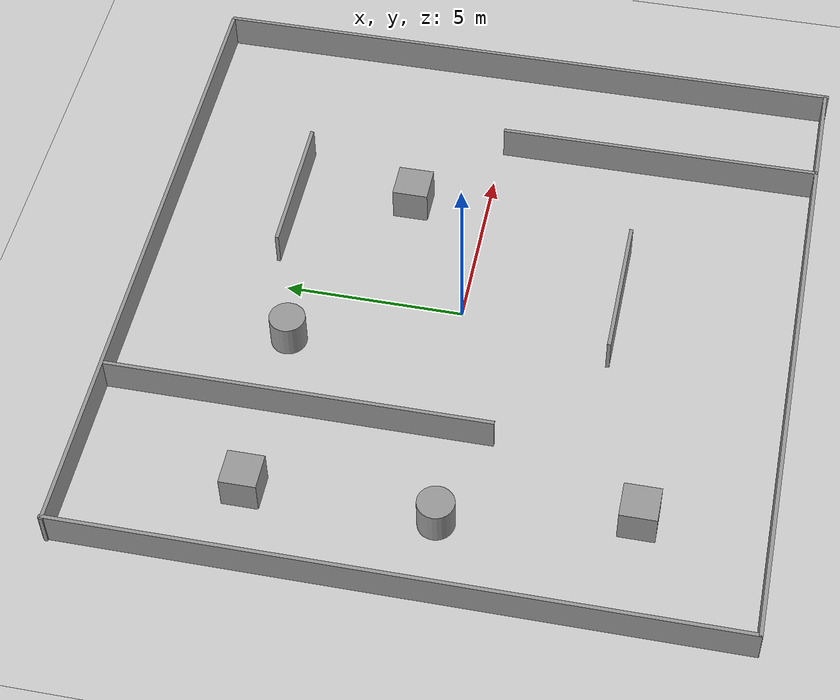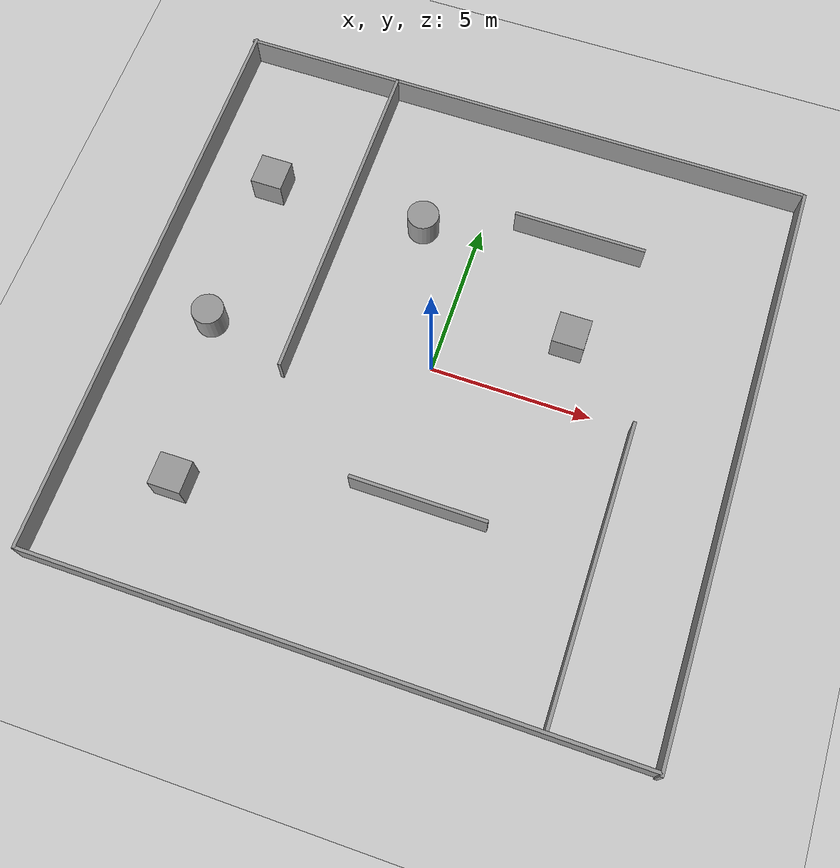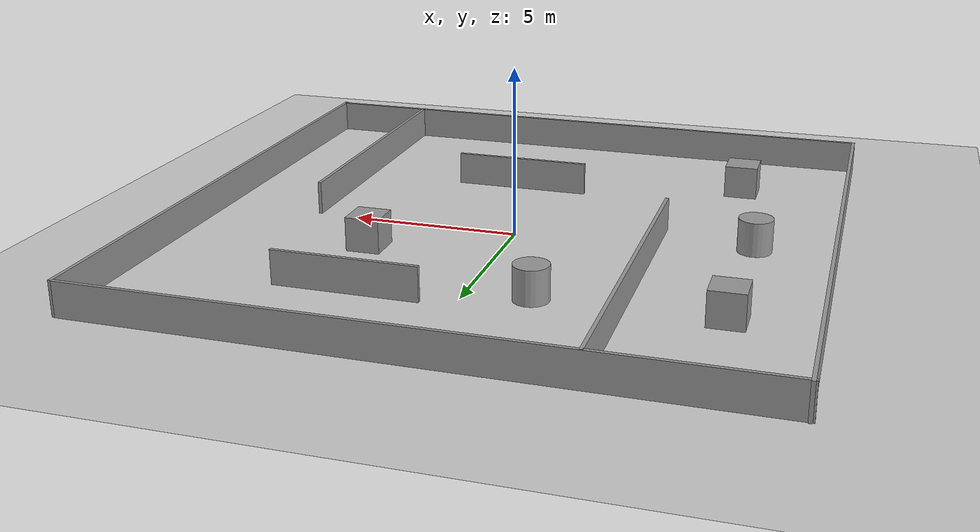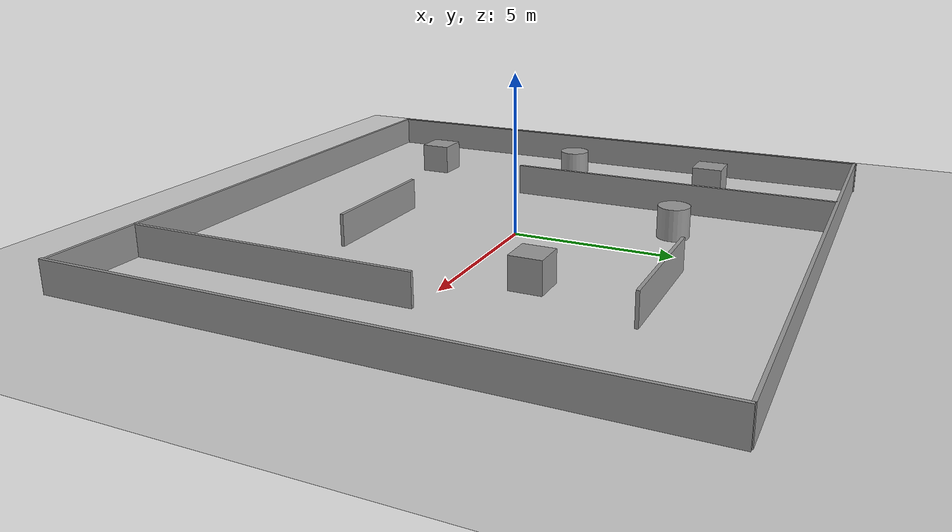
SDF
<sdf version="1.7">
 <world name="default">
  <light name="sun" type="directional">
   <pose>0 0 10 0 -0 0</pose>
   <diffuse>0.8 0.8 0.8 1</diffuse>
   <specular>0.2 0.2 0.2 1</specular>
   <attenuation>
    <range>1000</range>
    <constant>0.9</constant>
    <linear>0.01</linear>
    <quadratic>0.001</quadratic>
   </attenuation>
   <direction>-0.5 0.1 -0.9</direction>
   <spot><inner_angle>0</inner_angle><outer_angle>0</outer_angle><falloff>0</falloff></spot>
  </light>
  <model name="ground_plane">
   <static>1</static>
   <link name="link">
    <collision name="collision">
     <geometry><plane><normal>0 0 1</normal><size>100 100</size></plane></geometry>
     <surface>
      <contact><collide_bitmask>65535</collide_bitmask></contact>
      <friction><ode><mu>100</mu><mu2>50</mu2></ode></friction>
     </surface>
    </collision>
    <visual name="visual">
     <cast_shadows>0</cast_shadows>
     <geometry><plane><normal>0 0 1</normal><size>100 100</size></plane></geometry>
     <material>
      <script><uri>file://media/materials/scripts/gazebo.material</uri><name>Gazebo/Grey</name></script>
     </material>
    </visual>
   </link>
  </model>
  <gravity>0 0 -9.8</gravity>
  <magnetic_field>6e-06 2.3e-05 -4.2e-05</magnetic_field>
  <atmosphere type="adiabatic"/>
  <physics type="ode">
   <max_step_size>0.001</max_step_size>
   <real_time_factor>1</real_time_factor>
   <real_time_update_rate>1000</real_time_update_rate>
  </physics>
  <scene><ambient>0.4 0.4 0.4 1</ambient><background>0.7 0.7 0.7 1</background><shadows>1</shadows></scene>
  <spherical_coordinates>
   <surface_model>EARTH_WGS84</surface_model>
   <latitude_deg>0</latitude_deg>
   <longitude_deg>0</longitude_deg>
   <elevation>0</elevation>
   <heading_deg>0</heading_deg>
  </spherical_coordinates>
  <model name="w2">
   <link name="link_0">
    <inertial>
     <mass>1.88399</mass>
     <inertia><ixx>52.62</ixx><ixy>0</ixy><ixz>0</ixz><iyy>0.158664</iyy><iyz>0</iyz><izz>52.4647</izz></inertia>
    </inertial>
    <pose>-8.32284 -0.381676 0 0 -0 0</pose>
    <visual name="visual">
     <geometry><box><size>0.102972 18.2801 1</size></box></geometry>
     <material>
      <lighting>1</lighting>
      <script><uri>file://media/materials/scripts/gazebo.material</uri><name>Gazebo/Grey</name></script>
      <shader type="pixel"/>
     </material>
    </visual>
    <collision name="collision">
     <geometry><box><size>0.102972 18.2801 1</size></box></geometry>
     <surface>
      <friction>
       <ode><mu>1</mu><mu2>1</mu2><fdir1>0 0 0</fdir1><slip1>0</slip1><slip2>0</slip2></ode>
       <torsional>
        <coefficient>1</coefficient>
        <patch_radius>0</patch_radius>
        <surface_radius>0</surface_radius>
        <use_patch_radius>1</use_patch_radius>
        <ode><slip>0</slip></ode>
       </torsional>
      </friction>
      <bounce><restitution_coefficient>0</restitution_coefficient><threshold>1e+06</threshold></bounce>
      <contact>
       <collide_without_contact>0</collide_without_contact>
       <collide_without_contact_bitmask>1</collide_without_contact_bitmask>
       <collide_bitmask>1</collide_bitmask>
       <ode>
        <soft_cfm>0</soft_cfm>
        <soft_erp>0.2</soft_erp>
        <kp>1e+13</kp>
        <kd>1</kd>
        <max_vel>0.01</max_vel>
        <min_depth>0</min_depth>
       </ode>
       <bullet>
        <split_impulse>1</split_impulse>
        <split_impulse_penetration_threshold>-0.01</split_impulse_penetration_threshold>
        <soft_cfm>0</soft_cfm>
        <soft_erp>0.2</soft_erp>
        <kp>1e+13</kp>
        <kd>1</kd>
       </bullet>
      </contact>
     </surface>
    </collision>
   </link>
   <link name="link_0_clone">
    <inertial>
     <mass>1.10158</mass>
     <inertia><ixx>10.5878</ixx><ixy>0</ixy><ixz>0</ixz><iyy>0.092772</iyy><iyz>0</iyz><izz>10.497</izz></inertia>
    </inertial>
    <pose>-3.32467 3.32594 0 0 -0 0</pose>
    <visual name="visual">
     <geometry><box><size>0.102972 10.6929 1</size></box></geometry>
     <material>
      <lighting>1</lighting>
      <script><uri>file://media/materials/scripts/gazebo.material</uri><name>Gazebo/Grey</name></script>
      <shader type="pixel"/>
     </material>
    </visual>
    <collision name="collision">
     <geometry><box><size>0.102972 10.6929 1</size></box></geometry>
     <surface>
      <friction>
       <ode><mu>1</mu><mu2>1</mu2><fdir1>0 0 0</fdir1><slip1>0</slip1><slip2>0</slip2></ode>
       <torsional>
        <coefficient>1</coefficient>
        <patch_radius>0</patch_radius>
        <surface_radius>0</surface_radius>
        <use_patch_radius>1</use_patch_radius>
        <ode><slip>0</slip></ode>
       </torsional>
      </friction>
      <bounce><restitution_coefficient>0</restitution_coefficient><threshold>1e+06</threshold></bounce>
      <contact>
       <collide_without_contact>0</collide_without_contact>
       <collide_without_contact_bitmask>1</collide_without_contact_bitmask>
       <collide_bitmask>1</collide_bitmask>
       <ode>
        <soft_cfm>0</soft_cfm>
        <soft_erp>0.2</soft_erp>
        <kp>1e+13</kp>
        <kd>1</kd>
        <max_vel>0.01</max_vel>
        <min_depth>0</min_depth>
       </ode>
       <bullet>
        <split_impulse>1</split_impulse>
        <split_impulse_penetration_threshold>-0.01</split_impulse_penetration_threshold>
        <soft_cfm>0</soft_cfm>
        <soft_erp>0.2</soft_erp>
        <kp>1e+13</kp>
        <kd>1</kd>
       </bullet>
      </contact>
     </surface>
    </collision>
   </link>
   <link name="link_0_clone_0">
    <inertial>
     <mass>1.91995</mass>
     <inertia><ixx>55.7312</ixx><ixy>0</ixy><ixz>0</ixz><iyy>0.161693</iyy><iyz>0</iyz><izz>55.5729</izz></inertia>
    </inertial>
    <pose>0.944505 -9.51528 0 0 0 -1.57434</pose>
    <visual name="visual">
     <geometry><box><size>0.102972 18.6367 1</size></box></geometry>
     <material>
      <lighting>1</lighting>
      <script><uri>file://media/materials/scripts/gazebo.material</uri><name>Gazebo/Grey</name></script>
      <shader type="pixel"/>
     </material>
    </visual>
    <collision name="collision">
     <geometry><box><size>0.102972 18.6367 1</size></box></geometry>
     <surface>
      <friction>
       <ode><mu>1</mu><mu2>1</mu2><fdir1>0 0 0</fdir1><slip1>0</slip1><slip2>0</slip2></ode>
       <torsional>
        <coefficient>1</coefficient>
        <patch_radius>0</patch_radius>
        <surface_radius>0</surface_radius>
        <use_patch_radius>1</use_patch_radius>
        <ode><slip>0</slip></ode>
       </torsional>
      </friction>
      <bounce><restitution_coefficient>0</restitution_coefficient><threshold>1e+06</threshold></bounce>
      <contact>
       <collide_without_contact>0</collide_without_contact>
       <collide_without_contact_bitmask>1</collide_without_contact_bitmask>
       <collide_bitmask>1</collide_bitmask>
       <ode>
        <soft_cfm>0</soft_cfm>
        <soft_erp>0.2</soft_erp>
        <kp>1e+13</kp>
        <kd>1</kd>
        <max_vel>0.01</max_vel>
        <min_depth>0</min_depth>
       </ode>
       <bullet>
        <split_impulse>1</split_impulse>
        <split_impulse_penetration_threshold>-0.01</split_impulse_penetration_threshold>
        <soft_cfm>0</soft_cfm>
        <soft_erp>0.2</soft_erp>
        <kp>1e+13</kp>
        <kd>1</kd>
       </bullet>
      </contact>
     </surface>
    </collision>
   </link>
   <link name="link_0_clone_0_clone">
    <inertial>
     <mass>1.91995</mass>
     <inertia><ixx>55.7312</ixx><ixy>0</ixy><ixz>0</ixz><iyy>0.161693</iyy><iyz>0</iyz><izz>55.5729</izz></inertia>
    </inertial>
    <pose>0.899697 8.63843 0 0 0 -1.57434</pose>
    <visual name="visual">
     <geometry><box><size>0.102972 18.6367 1</size></box></geometry>
     <material>
      <lighting>1</lighting>
      <script><uri>file://media/materials/scripts/gazebo.material</uri><name>Gazebo/Grey</name></script>
      <shader type="pixel"/>
     </material>
    </visual>
    <collision name="collision">
     <geometry><box><size>0.102972 18.6367 1</size></box></geometry>
     <surface>
      <friction>
       <ode><mu>1</mu><mu2>1</mu2><fdir1>0 0 0</fdir1><slip1>0</slip1><slip2>0</slip2></ode>
       <torsional>
        <coefficient>1</coefficient>
        <patch_radius>0</patch_radius>
        <surface_radius>0</surface_radius>
        <use_patch_radius>1</use_patch_radius>
        <ode><slip>0</slip></ode>
       </torsional>
      </friction>
      <bounce><restitution_coefficient>0</restitution_coefficient><threshold>1e+06</threshold></bounce>
      <contact>
       <collide_without_contact>0</collide_without_contact>
       <collide_without_contact_bitmask>1</collide_without_contact_bitmask>
       <collide_bitmask>1</collide_bitmask>
       <ode>
        <soft_cfm>0</soft_cfm>
        <soft_erp>0.2</soft_erp>
        <kp>1e+13</kp>
        <kd>1</kd>
        <max_vel>0.01</max_vel>
        <min_depth>0</min_depth>
       </ode>
       <bullet>
        <split_impulse>1</split_impulse>
        <split_impulse_penetration_threshold>-0.01</split_impulse_penetration_threshold>
        <soft_cfm>0</soft_cfm>
        <soft_erp>0.2</soft_erp>
        <kp>1e+13</kp>
        <kd>1</kd>
       </bullet>
      </contact>
     </surface>
    </collision>
   </link>
   <link name="link_0_clone_1">
    <inertial>
     <mass>1.88399</mass>
     <inertia><ixx>52.62</ixx><ixy>0</ixy><ixz>0</ixz><iyy>0.158664</iyy><iyz>0</iyz><izz>52.4647</izz></inertia>
    </inertial>
    <pose>10.2604 -0.508915 0 0 -0 0</pose>
    <visual name="visual">
     <geometry><box><size>0.102972 18.2801 1</size></box></geometry>
     <material>
      <lighting>1</lighting>
      <script><uri>file://media/materials/scripts/gazebo.material</uri><name>Gazebo/Grey</name></script>
      <shader type="pixel"/>
     </material>
    </visual>
    <collision name="collision">
     <geometry><box><size>0.102972 18.2801 1</size></box></geometry>
     <surface>
      <friction>
       <ode><mu>1</mu><mu2>1</mu2><fdir1>0 0 0</fdir1><slip1>0</slip1><slip2>0</slip2></ode>
       <torsional>
        <coefficient>1</coefficient>
        <patch_radius>0</patch_radius>
        <surface_radius>0</surface_radius>
        <use_patch_radius>1</use_patch_radius>
        <ode><slip>0</slip></ode>
       </torsional>
      </friction>
      <bounce><restitution_coefficient>0</restitution_coefficient><threshold>1e+06</threshold></bounce>
      <contact>
       <collide_without_contact>0</collide_without_contact>
       <collide_without_contact_bitmask>1</collide_without_contact_bitmask>
       <collide_bitmask>1</collide_bitmask>
       <ode>
        <soft_cfm>0</soft_cfm>
        <soft_erp>0.2</soft_erp>
        <kp>1e+13</kp>
        <kd>1</kd>
        <max_vel>0.01</max_vel>
        <min_depth>0</min_depth>
       </ode>
       <bullet>
        <split_impulse>1</split_impulse>
        <split_impulse_penetration_threshold>-0.01</split_impulse_penetration_threshold>
        <soft_cfm>0</soft_cfm>
        <soft_erp>0.2</soft_erp>
        <kp>1e+13</kp>
        <kd>1</kd>
       </bullet>
      </contact>
     </surface>
    </collision>
   </link>
   <link name="link_0_clone_clone">
    <inertial>
     <mass>0.943454</mass>
     <inertia><ixx>6.67249</ixx><ixy>0</ixy><ixz>0</ixz><iyy>0.0794548</iyy><iyz>0</iyz><izz>6.5947</izz></inertia>
    </inertial>
    <pose>7.12467 -4.98991 0 0 -0 0</pose>
    <visual name="visual">
     <geometry><box><size>0.102972 9.15799 1</size></box></geometry>
     <material>
      <lighting>1</lighting>
      <script><uri>file://media/materials/scripts/gazebo.material</uri><name>Gazebo/Grey</name></script>
      <shader type="pixel"/>
     </material>
    </visual>
    <collision name="collision">
     <geometry><box><size>0.102972 9.15799 1</size></box></geometry>
     <surface>
      <friction>
       <ode><mu>1</mu><mu2>1</mu2><fdir1>0 0 0</fdir1><slip1>0</slip1><slip2>0</slip2></ode>
       <torsional>
        <coefficient>1</coefficient>
        <patch_radius>0</patch_radius>
        <surface_radius>0</surface_radius>
        <use_patch_radius>1</use_patch_radius>
        <ode><slip>0</slip></ode>
       </torsional>
      </friction>
      <bounce><restitution_coefficient>0</restitution_coefficient><threshold>1e+06</threshold></bounce>
      <contact>
       <collide_without_contact>0</collide_without_contact>
       <collide_without_contact_bitmask>1</collide_without_contact_bitmask>
       <collide_bitmask>1</collide_bitmask>
       <ode>
        <soft_cfm>0</soft_cfm>
        <soft_erp>0.2</soft_erp>
        <kp>1e+13</kp>
        <kd>1</kd>
        <max_vel>0.01</max_vel>
        <min_depth>0</min_depth>
       </ode>
       <bullet>
        <split_impulse>1</split_impulse>
        <split_impulse_penetration_threshold>-0.01</split_impulse_penetration_threshold>
        <soft_cfm>0</soft_cfm>
        <soft_erp>0.2</soft_erp>
        <kp>1e+13</kp>
        <kd>1</kd>
       </bullet>
      </contact>
     </surface>
    </collision>
   </link>
   <link name="link_0_clone_clone_clone">
    <inertial>
     <mass>0.431298</mass>
     <inertia>
      <ixx>0.665898</ixx>
      <ixy>0</ixy>
      <ixz>0</ixz>
      <iyy>0.0363226</iyy>
      <iyz>0</iyz>
      <izz>0.630338</izz>
     </inertia>
    </inertial>
    <pose>3.90913 5.11327 0 0 0 -1.57578</pose>
    <visual name="visual">
     <geometry><box><size>0.102972 4.18656 1</size></box></geometry>
     <material>
      <lighting>1</lighting>
      <script><uri>file://media/materials/scripts/gazebo.material</uri><name>Gazebo/Grey</name></script>
      <shader type="pixel"/>
     </material>
    </visual>
    <collision name="collision">
     <geometry><box><size>0.102972 4.18656 1</size></box></geometry>
     <surface>
      <friction>
       <ode><mu>1</mu><mu2>1</mu2><fdir1>0 0 0</fdir1><slip1>0</slip1><slip2>0</slip2></ode>
       <torsional>
        <coefficient>1</coefficient>
        <patch_radius>0</patch_radius>
        <surface_radius>0</surface_radius>
        <use_patch_radius>1</use_patch_radius>
        <ode><slip>0</slip></ode>
       </torsional>
      </friction>
      <bounce><restitution_coefficient>0</restitution_coefficient><threshold>1e+06</threshold></bounce>
      <contact>
       <collide_without_contact>0</collide_without_contact>
       <collide_without_contact_bitmask>1</collide_without_contact_bitmask>
       <collide_bitmask>1</collide_bitmask>
       <ode>
        <soft_cfm>0</soft_cfm>
        <soft_erp>0.2</soft_erp>
        <kp>1e+13</kp>
        <kd>1</kd>
        <max_vel>0.01</max_vel>
        <min_depth>0</min_depth>
       </ode>
       <bullet>
        <split_impulse>1</split_impulse>
        <split_impulse_penetration_threshold>-0.01</split_impulse_penetration_threshold>
        <soft_cfm>0</soft_cfm>
        <soft_erp>0.2</soft_erp>
        <kp>1e+13</kp>
        <kd>1</kd>
       </bullet>
      </contact>
     </surface>
    </collision>
   </link>
   <link name="link_0_clone_clone_clone_clone">
    <inertial>
     <mass>0.431298</mass>
     <inertia>
      <ixx>0.665898</ixx>
      <ixy>0</ixy>
      <ixz>0</ixz>
      <iyy>0.0363226</iyy>
      <iyz>0</iyz>
      <izz>0.630338</izz>
     </inertia>
    </inertial>
    <pose>1.88824 -4.59589 0 0 0 -1.57578</pose>
    <visual name="visual">
     <geometry><box><size>0.102972 4.18656 1</size></box></geometry>
     <material>
      <lighting>1</lighting>
      <script><uri>file://media/materials/scripts/gazebo.material</uri><name>Gazebo/Grey</name></script>
      <shader type="pixel"/>
     </material>
    </visual>
    <collision name="collision">
     <geometry><box><size>0.102972 4.18656 1</size></box></geometry>
     <surface>
      <friction>
       <ode><mu>1</mu><mu2>1</mu2><fdir1>0 0 0</fdir1><slip1>0</slip1><slip2>0</slip2></ode>
       <torsional>
        <coefficient>1</coefficient>
        <patch_radius>0</patch_radius>
        <surface_radius>0</surface_radius>
        <use_patch_radius>1</use_patch_radius>
        <ode><slip>0</slip></ode>
       </torsional>
      </friction>
      <bounce><restitution_coefficient>0</restitution_coefficient><threshold>1e+06</threshold></bounce>
      <contact>
       <collide_without_contact>0</collide_without_contact>
       <collide_without_contact_bitmask>1</collide_without_contact_bitmask>
       <collide_bitmask>1</collide_bitmask>
       <ode>
        <soft_cfm>0</soft_cfm>
        <soft_erp>0.2</soft_erp>
        <kp>1e+13</kp>
        <kd>1</kd>
        <max_vel>0.01</max_vel>
        <min_depth>0</min_depth>
       </ode>
       <bullet>
        <split_impulse>1</split_impulse>
        <split_impulse_penetration_threshold>-0.01</split_impulse_penetration_threshold>
        <soft_cfm>0</soft_cfm>
        <soft_erp>0.2</soft_erp>
        <kp>1e+13</kp>
        <kd>1</kd>
       </bullet>
      </contact>
     </surface>
    </collision>
   </link>
   <link name="link_1">
    <inertial>
     <mass>1</mass>
     <inertia>
      <ixx>0.166667</ixx>
      <ixy>0</ixy>
      <ixz>0</ixz>
      <iyy>0.166667</iyy>
      <iyz>0</iyz>
      <izz>0.166667</izz>
     </inertia>
    </inertial>
    <pose>4.59856 1.78932 0 0 -0 0</pose>
    <visual name="visual">
     <geometry><box><size>1 1 1</size></box></geometry>
     <material>
      <lighting>1</lighting>
      <script><uri>file://media/materials/scripts/gazebo.material</uri><name>Gazebo/Grey</name></script>
      <shader type="pixel"/>
     </material>
    </visual>
    <collision name="collision">
     <geometry><box><size>1 1 1</size></box></geometry>
     <surface>
      <friction>
       <ode><mu>1</mu><mu2>1</mu2><fdir1>0 0 0</fdir1><slip1>0</slip1><slip2>0</slip2></ode>
       <torsional>
        <coefficient>1</coefficient>
        <patch_radius>0</patch_radius>
        <surface_radius>0</surface_radius>
        <use_patch_radius>1</use_patch_radius>
        <ode><slip>0</slip></ode>
       </torsional>
      </friction>
      <bounce><restitution_coefficient>0</restitution_coefficient><threshold>1e+06</threshold></bounce>
      <contact>
       <collide_without_contact>0</collide_without_contact>
       <collide_without_contact_bitmask>1</collide_without_contact_bitmask>
       <collide_bitmask>1</collide_bitmask>
       <ode>
        <soft_cfm>0</soft_cfm>
        <soft_erp>0.2</soft_erp>
        <kp>1e+13</kp>
        <kd>1</kd>
        <max_vel>0.01</max_vel>
        <min_depth>0</min_depth>
       </ode>
       <bullet>
        <split_impulse>1</split_impulse>
        <split_impulse_penetration_threshold>-0.01</split_impulse_penetration_threshold>
        <soft_cfm>0</soft_cfm>
        <soft_erp>0.2</soft_erp>
        <kp>1e+13</kp>
        <kd>1</kd>
       </bullet>
      </contact>
     </surface>
    </collision>
   </link>
   <link name="link_2">
    <inertial>
     <mass>1</mass>
     <inertia>
      <ixx>0.166667</ixx>
      <ixy>0</ixy>
      <ixz>0</ixz>
      <iyy>0.166667</iyy>
      <iyz>0</iyz>
      <izz>0.166667</izz>
     </inertia>
    </inertial>
    <pose>-5.97304 4.08756 0 0 -0 0</pose>
    <visual name="visual">
     <geometry><box><size>1 1 1</size></box></geometry>
     <material>
      <lighting>1</lighting>
      <script><uri>file://media/materials/scripts/gazebo.material</uri><name>Gazebo/Grey</name></script>
      <shader type="pixel"/>
     </material>
    </visual>
    <collision name="collision">
     <geometry><box><size>1 1 1</size></box></geometry>
     <surface>
      <friction>
       <ode><mu>1</mu><mu2>1</mu2><fdir1>0 0 0</fdir1><slip1>0</slip1><slip2>0</slip2></ode>
       <torsional>
        <coefficient>1</coefficient>
        <patch_radius>0</patch_radius>
        <surface_radius>0</surface_radius>
        <use_patch_radius>1</use_patch_radius>
        <ode><slip>0</slip></ode>
       </torsional>
      </friction>
      <bounce><restitution_coefficient>0</restitution_coefficient><threshold>1e+06</threshold></bounce>
      <contact>
       <collide_without_contact>0</collide_without_contact>
       <collide_without_contact_bitmask>1</collide_without_contact_bitmask>
       <collide_bitmask>1</collide_bitmask>
       <ode>
        <soft_cfm>0</soft_cfm>
        <soft_erp>0.2</soft_erp>
        <kp>1e+13</kp>
        <kd>1</kd>
        <max_vel>0.01</max_vel>
        <min_depth>0</min_depth>
       </ode>
       <bullet>
        <split_impulse>1</split_impulse>
        <split_impulse_penetration_threshold>-0.01</split_impulse_penetration_threshold>
        <soft_cfm>0</soft_cfm>
        <soft_erp>0.2</soft_erp>
        <kp>1e+13</kp>
        <kd>1</kd>
       </bullet>
      </contact>
     </surface>
    </collision>
   </link>
   <link name="link_3">
    <inertial>
     <mass>1</mass>
     <inertia>
      <ixx>0.166667</ixx>
      <ixy>0</ixy>
      <ixz>0</ixz>
      <iyy>0.166667</iyy>
      <iyz>0</iyz>
      <izz>0.166667</izz>
     </inertia>
    </inertial>
    <pose>-5.05552 -6.10617 0 0 -0 0</pose>
    <visual name="visual">
     <geometry><box><size>1 1 1</size></box></geometry>
     <material>
      <lighting>1</lighting>
      <script><uri>file://media/materials/scripts/gazebo.material</uri><name>Gazebo/Grey</name></script>
      <shader type="pixel"/>
     </material>
    </visual>
    <collision name="collision">
     <geometry><box><size>1 1 1</size></box></geometry>
     <surface>
      <friction>
       <ode><mu>1</mu><mu2>1</mu2><fdir1>0 0 0</fdir1><slip1>0</slip1><slip2>0</slip2></ode>
       <torsional>
        <coefficient>1</coefficient>
        <patch_radius>0</patch_radius>
        <surface_radius>0</surface_radius>
        <use_patch_radius>1</use_patch_radius>
        <ode><slip>0</slip></ode>
       </torsional>
      </friction>
      <bounce><restitution_coefficient>0</restitution_coefficient><threshold>1e+06</threshold></bounce>
      <contact>
       <collide_without_contact>0</collide_without_contact>
       <collide_without_contact_bitmask>1</collide_without_contact_bitmask>
       <collide_bitmask>1</collide_bitmask>
       <ode>
        <soft_cfm>0</soft_cfm>
        <soft_erp>0.2</soft_erp>
        <kp>1e+13</kp>
        <kd>1</kd>
        <max_vel>0.01</max_vel>
        <min_depth>0</min_depth>
       </ode>
       <bullet>
        <split_impulse>1</split_impulse>
        <split_impulse_penetration_threshold>-0.01</split_impulse_penetration_threshold>
        <soft_cfm>0</soft_cfm>
        <soft_erp>0.2</soft_erp>
        <kp>1e+13</kp>
        <kd>1</kd>
       </bullet>
      </contact>
     </surface>
    </collision>
   </link>
   <link name="link_4">
    <inertial>
     <mass>1</mass>
     <inertia><ixx>0.145833</ixx><ixy>0</ixy><ixz>0</ixz><iyy>0.145833</iyy><iyz>0</iyz><izz>0.125</izz></inertia>
    </inertial>
    <pose>-6.04301 -1.00413 0 0 -0 0</pose>
    <visual name="visual">
     <geometry><cylinder><radius>0.5</radius><length>1</length></cylinder></geometry>
     <material>
      <lighting>1</lighting>
      <script><uri>file://media/materials/scripts/gazebo.material</uri><name>Gazebo/Grey</name></script>
      <shader type="pixel"/>
     </material>
    </visual>
    <collision name="collision">
     <geometry><cylinder><radius>0.5</radius><length>1</length></cylinder></geometry>
     <surface>
      <friction>
       <ode><mu>1</mu><mu2>1</mu2><fdir1>0 0 0</fdir1><slip1>0</slip1><slip2>0</slip2></ode>
       <torsional>
        <coefficient>1</coefficient>
        <patch_radius>0</patch_radius>
        <surface_radius>0</surface_radius>
        <use_patch_radius>1</use_patch_radius>
        <ode><slip>0</slip></ode>
       </torsional>
      </friction>
      <bounce><restitution_coefficient>0</restitution_coefficient><threshold>1e+06</threshold></bounce>
      <contact>
       <collide_without_contact>0</collide_without_contact>
       <collide_without_contact_bitmask>1</collide_without_contact_bitmask>
       <collide_bitmask>1</collide_bitmask>
       <ode>
        <soft_cfm>0</soft_cfm>
        <soft_erp>0.2</soft_erp>
        <kp>1e+13</kp>
        <kd>1</kd>
        <max_vel>0.01</max_vel>
        <min_depth>0</min_depth>
       </ode>
       <bullet>
        <split_impulse>1</split_impulse>
        <split_impulse_penetration_threshold>-0.01</split_impulse_penetration_threshold>
        <soft_cfm>0</soft_cfm>
        <soft_erp>0.2</soft_erp>
        <kp>1e+13</kp>
        <kd>1</kd>
       </bullet>
      </contact>
     </surface>
    </collision>
   </link>
   <link name="link_5">
    <inertial>
     <mass>1</mass>
     <inertia><ixx>0.145833</ixx><ixy>0</ixy><ixz>0</ixz><iyy>0.145833</iyy><iyz>0</iyz><izz>0.125</izz></inertia>
    </inertial>
    <pose>-0.90617 4.14744 0 0 -0 0</pose>
    <visual name="visual">
     <geometry><cylinder><radius>0.5</radius><length>1</length></cylinder></geometry>
     <material>
      <lighting>1</lighting>
      <script><uri>file://media/materials/scripts/gazebo.material</uri><name>Gazebo/Grey</name></script>
      <shader type="pixel"/>
     </material>
    </visual>
    <collision name="collision">
     <geometry><cylinder><radius>0.5</radius><length>1</length></cylinder></geometry>
     <surface>
      <friction>
       <ode><mu>1</mu><mu2>1</mu2><fdir1>0 0 0</fdir1><slip1>0</slip1><slip2>0</slip2></ode>
       <torsional>
        <coefficient>1</coefficient>
        <patch_radius>0</patch_radius>
        <surface_radius>0</surface_radius>
        <use_patch_radius>1</use_patch_radius>
        <ode><slip>0</slip></ode>
       </torsional>
      </friction>
      <bounce><restitution_coefficient>0</restitution_coefficient><threshold>1e+06</threshold></bounce>
      <contact>
       <collide_without_contact>0</collide_without_contact>
       <collide_without_contact_bitmask>1</collide_without_contact_bitmask>
       <collide_bitmask>1</collide_bitmask>
       <ode>
        <soft_cfm>0</soft_cfm>
        <soft_erp>0.2</soft_erp>
        <kp>1e+13</kp>
        <kd>1</kd>
        <max_vel>0.01</max_vel>
        <min_depth>0</min_depth>
       </ode>
       <bullet>
        <split_impulse>1</split_impulse>
        <split_impulse_penetration_threshold>-0.01</split_impulse_penetration_threshold>
        <soft_cfm>0</soft_cfm>
        <soft_erp>0.2</soft_erp>
        <kp>1e+13</kp>
        <kd>1</kd>
       </bullet>
      </contact>
     </surface>
    </collision>
   </link>
   <static>0</static>
   <pose>-0.875479 0.35132 0.5 0 -0 0</pose>
  </model>
 </world>
</sdf>
